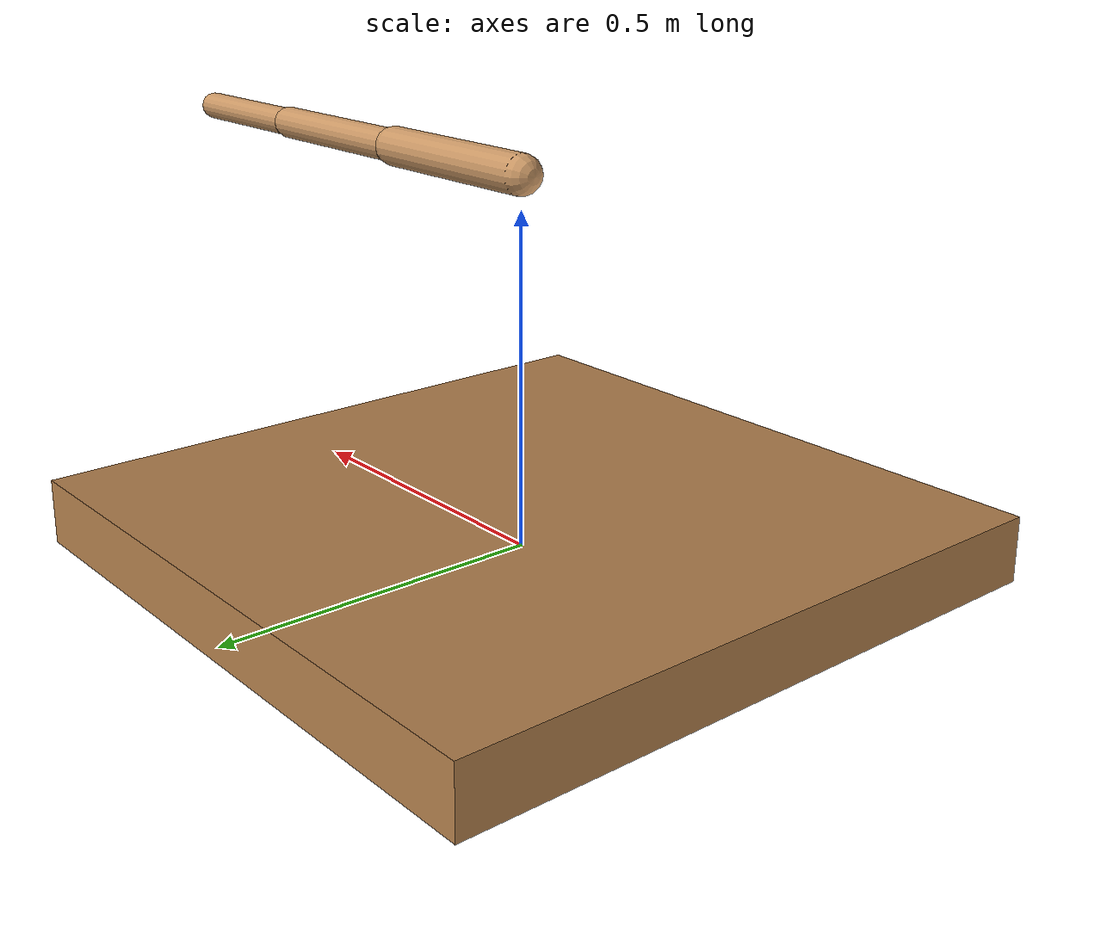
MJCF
<mujoco model="three_link_arm">
  <compiler angle="radian" coordinate="local"/>
  <option gravity="0 0 0" timestep="0.01"/>

  <default>
    <joint armature="0.04" damping="0.05" stiffness="0.1" limited="false" />
    <geom density="300" friction="1 0.1 0.1" margin="0.002" rgba="0.8 0.6 0.4 1"/>
  </default>

  <worldbody>
    <!-- Scene lighting -->
    <light name="light" pos="0 0 1.5" dir="0 0 -1" diffuse="0.9 0.9 0.9" specular="0.2 0.2 0.2"/>

    <!-- Support table -->
    <geom name="table" type="box" size="0.5 0.5 0.05" pos="0 0 0.025" rgba="0.7 0.5 0.3 1"/>

    <!-- Robot base -->
    <body name="base" pos="0 0 0.05">
      <!-- First link -->
      <body name="link1" pos="0 0 0.5">
        <joint name="joint1" type="hinge" axis="0 0 1" pos="0 0 0" limited="false"/>
        <geom name="link1_geom" type="capsule" fromto="0 0 0 0.3 0 0" size="0.03"/>

        <!-- Second link, serially connected -->
        <body name="link2" pos="0.3 0 0">
          <joint name="joint2" type="hinge" axis="0 1 0" pos="0 0 0" limited="false"/>
          <geom name="link2_geom" type="capsule" fromto="0 0 0 0.3 0 0" size="0.025"/>

          <!-- Third link, extends dexterity -->
          <body name="link3" pos="0.3 0 0">
            <joint name="joint3" type="hinge" axis="0 1 0" pos="0 0 0" limited="false"/>
            <geom name="link3_geom" type="capsule" fromto="0 0 0 0.25 0 0" size="0.022"/>
            <!-- End-effector-frame -->
            <site name="ee_frame" pos="0.25 0 0" size="0.01" rgba="0 1 0 1"/>
          </body>
        </body>
      </body>
    </body>
  </worldbody>
  <actuator>
    <motor ctrllimited="true" ctrlrange="-1.0 1.0" gear="200.0" name="joint1_effort_actuator" joint="joint1"/>
    <motor ctrllimited="true" ctrlrange="-1.0 1.0" gear="200.0" name="joint2_effort_actuator" joint="joint2"/>
    <motor ctrllimited="true" ctrlrange="-1.0 1.0" gear="200.0" name="joint3_effort_actuator" joint="joint3"/>
  </actuator>
</mujoco>
